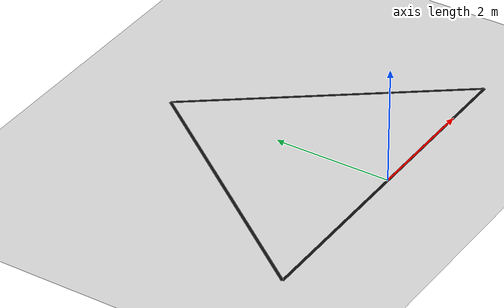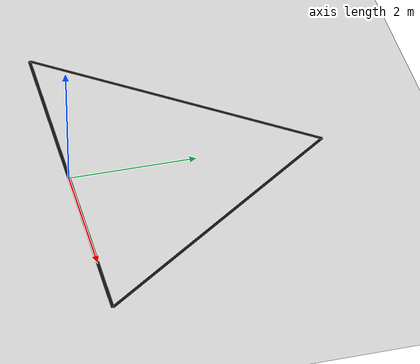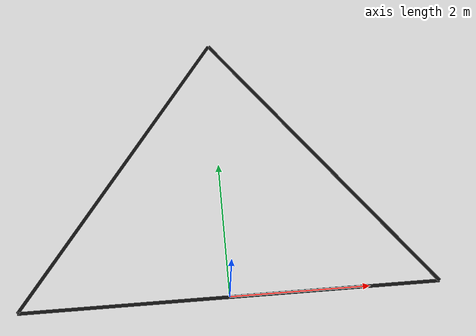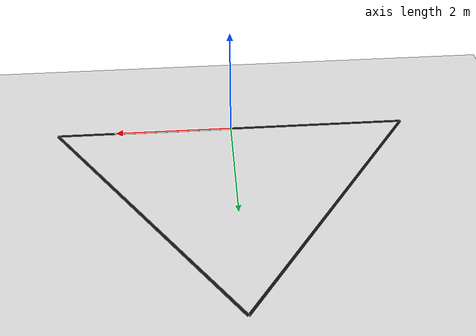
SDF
<?xml version="1.0"?>
<sdf version="1.6">
  <world name="triangle">

    <include>
      <uri>model://ground_plane</uri>
    </include>

    <include>
      <uri>model://sun</uri>
    </include>

    <!-- Bottom edge -->
    <model name="bottom">
      <static>true</static>
      <pose>0 0 0.001 0 0 0</pose>
      <link name="link">
        <visual name="visual">
          <geometry>
            <box>
              <size>6.0 0.05 0.001</size>
            </box>
          </geometry>
          <material>
            <ambient>0.05 0.05 0.05 1</ambient>
            <diffuse>0.05 0.05 0.05 1</diffuse>
          </material>
        </visual>
      </link>
    </model>

    <!-- Left diagonal edge -->
    <model name="left_edge">
      <static>true</static>
      <pose>-1.5 2 0.001 0 0 0.9273</pose>
      <link name="link">
        <visual name="visual">
          <geometry>
            <box>
              <size>5.0 0.05 0.001</size>
            </box>
          </geometry>
          <material>
            <ambient>0.05 0.05 0.05 1</ambient>
            <diffuse>0.05 0.05 0.05 1</diffuse>
          </material>
        </visual>
      </link>
    </model>

    <!-- Right diagonal edge -->
    <model name="right_edge">
      <static>true</static>
      <pose>1.5 2 0.001 0 0 -0.9273</pose>
      <link name="link">
        <visual name="visual">
          <geometry>
            <box>
              <size>5.0 0.05 0.001</size>
            </box>
          </geometry>
          <material>
            <ambient>0.05 0.05 0.05 1</ambient>
            <diffuse>0.05 0.05 0.05 1</diffuse>
          </material>
        </visual>
      </link>
    </model>

  </world>
</sdf>
